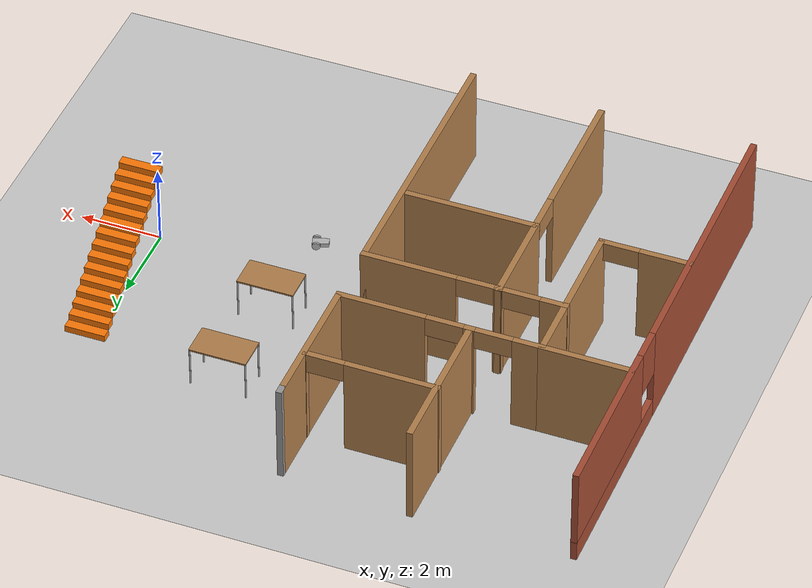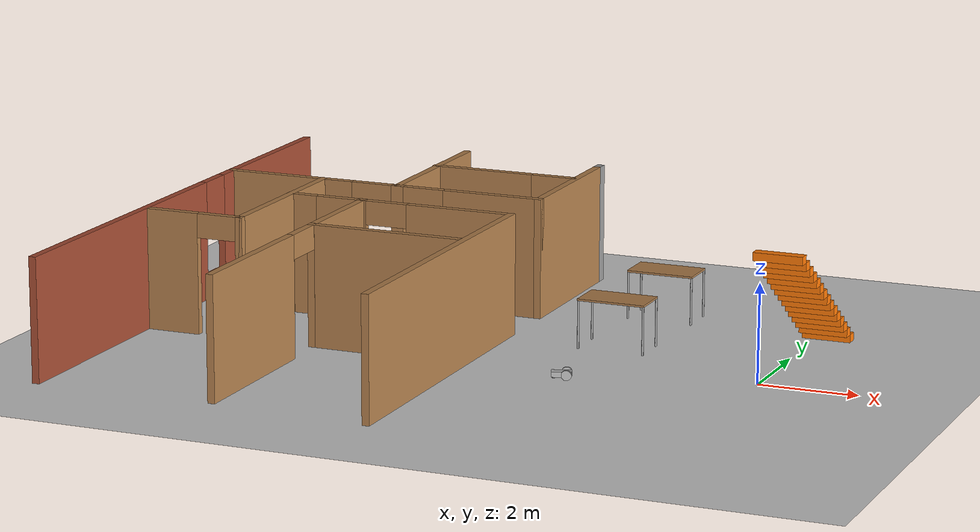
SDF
<sdf version="1.6">
 <world name="default">
  <model name="ground_plane">
   <static>1</static>
   <link name="link">
    <collision name="collision">
     <geometry><plane><normal>0 0 1</normal><size>100 100</size></plane></geometry>
     <surface><friction><ode><mu>100</mu><mu2>50</mu2></ode></friction></surface>
    </collision>
    <visual name="visual">
     <cast_shadows>0</cast_shadows>
     <geometry><plane><normal>0 0 1</normal><size>100 100</size></plane></geometry>
     <material>
      <script><uri>file://media/materials/scripts/gazebo.material</uri><name>Gazebo/Grey</name></script>
     </material>
    </visual>
   </link>
  </model>
  <model name="myhouse">
   <pose>-0.386417 0.578117 0 0 -0 0</pose>
   <link name="Stairs_1">
    <visual name="Stairs_1_Visual_0">
     <pose>0.612913 3.12759 0.083333 0 -0 0</pose>
     <geometry><box><size>1 0.233333 0.166667</size></box></geometry>
     <material>
      <script><uri>file://media/materials/scripts/gazebo.material</uri><name>Gazebo/Grey</name></script>
      <ambient>0.996078 0.47451 0.0196078 1</ambient>
     </material>
    </visual>
    <collision name="Stairs_1_Collision_0">
     <geometry><box><size>1 0.233333 0.166667</size></box></geometry>
     <pose>0.612913 3.12759 0.083333 0 -0 0</pose>
    </collision>
    <visual name="Stairs_1_Visual_1">
     <pose>0.612913 2.89426 0.25 0 -0 0</pose>
     <geometry><box><size>1 0.233333 0.166667</size></box></geometry>
     <material>
      <script><uri>file://media/materials/scripts/gazebo.material</uri><name>Gazebo/Grey</name></script>
      <ambient>0.996078 0.47451 0.0196078 1</ambient>
     </material>
    </visual>
    <collision name="Stairs_1_Collision_1">
     <geometry><box><size>1 0.233333 0.166667</size></box></geometry>
     <pose>0.612913 2.89426 0.25 0 -0 0</pose>
    </collision>
    <visual name="Stairs_1_Visual_2">
     <pose>0.612913 2.66093 0.416667 0 -0 0</pose>
     <geometry><box><size>1 0.233333 0.166667</size></box></geometry>
     <material>
      <script><uri>file://media/materials/scripts/gazebo.material</uri><name>Gazebo/Grey</name></script>
      <ambient>0.996078 0.47451 0.0196078 1</ambient>
     </material>
    </visual>
    <collision name="Stairs_1_Collision_2">
     <geometry><box><size>1 0.233333 0.166667</size></box></geometry>
     <pose>0.612913 2.66093 0.416667 0 -0 0</pose>
    </collision>
    <visual name="Stairs_1_Visual_3">
     <pose>0.612913 2.4276 0.583333 0 -0 0</pose>
     <geometry><box><size>1 0.233333 0.166667</size></box></geometry>
     <material>
      <script><uri>file://media/materials/scripts/gazebo.material</uri><name>Gazebo/Grey</name></script>
      <ambient>0.996078 0.47451 0.0196078 1</ambient>
     </material>
    </visual>
    <collision name="Stairs_1_Collision_3">
     <geometry><box><size>1 0.233333 0.166667</size></box></geometry>
     <pose>0.612913 2.4276 0.583333 0 -0 0</pose>
    </collision>
    <visual name="Stairs_1_Visual_4">
     <pose>0.612913 2.19426 0.75 0 -0 0</pose>
     <geometry><box><size>1 0.233333 0.166667</size></box></geometry>
     <material>
      <script><uri>file://media/materials/scripts/gazebo.material</uri><name>Gazebo/Grey</name></script>
      <ambient>0.996078 0.47451 0.0196078 1</ambient>
     </material>
    </visual>
    <collision name="Stairs_1_Collision_4">
     <geometry><box><size>1 0.233333 0.166667</size></box></geometry>
     <pose>0.612913 2.19426 0.75 0 -0 0</pose>
    </collision>
    <visual name="Stairs_1_Visual_5">
     <pose>0.612913 1.96093 0.916667 0 -0 0</pose>
     <geometry><box><size>1 0.233333 0.166667</size></box></geometry>
     <material>
      <script><uri>file://media/materials/scripts/gazebo.material</uri><name>Gazebo/Grey</name></script>
      <ambient>0.996078 0.47451 0.0196078 1</ambient>
     </material>
    </visual>
    <collision name="Stairs_1_Collision_5">
     <geometry><box><size>1 0.233333 0.166667</size></box></geometry>
     <pose>0.612913 1.96093 0.916667 0 -0 0</pose>
    </collision>
    <visual name="Stairs_1_Visual_6">
     <pose>0.612913 1.72759 1.08333 0 -0 0</pose>
     <geometry><box><size>1 0.233333 0.166667</size></box></geometry>
     <material>
      <script><uri>file://media/materials/scripts/gazebo.material</uri><name>Gazebo/Grey</name></script>
      <ambient>0.996078 0.47451 0.0196078 1</ambient>
     </material>
    </visual>
    <collision name="Stairs_1_Collision_6">
     <geometry><box><size>1 0.233333 0.166667</size></box></geometry>
     <pose>0.612913 1.72759 1.08333 0 -0 0</pose>
    </collision>
    <visual name="Stairs_1_Visual_7">
     <pose>0.612913 1.49426 1.25 0 -0 0</pose>
     <geometry><box><size>1 0.233333 0.166667</size></box></geometry>
     <material>
      <script><uri>file://media/materials/scripts/gazebo.material</uri><name>Gazebo/Grey</name></script>
      <ambient>0.996078 0.47451 0.0196078 1</ambient>
     </material>
    </visual>
    <collision name="Stairs_1_Collision_7">
     <geometry><box><size>1 0.233333 0.166667</size></box></geometry>
     <pose>0.612913 1.49426 1.25 0 -0 0</pose>
    </collision>
    <visual name="Stairs_1_Visual_8">
     <pose>0.612913 1.26093 1.41667 0 -0 0</pose>
     <geometry><box><size>1 0.233333 0.166667</size></box></geometry>
     <material>
      <script><uri>file://media/materials/scripts/gazebo.material</uri><name>Gazebo/Grey</name></script>
      <ambient>0.996078 0.47451 0.0196078 1</ambient>
     </material>
    </visual>
    <collision name="Stairs_1_Collision_8">
     <geometry><box><size>1 0.233333 0.166667</size></box></geometry>
     <pose>0.612913 1.26093 1.41667 0 -0 0</pose>
    </collision>
    <visual name="Stairs_1_Visual_9">
     <pose>0.612913 1.0276 1.58333 0 -0 0</pose>
     <geometry><box><size>1 0.233333 0.166667</size></box></geometry>
     <material>
      <script><uri>file://media/materials/scripts/gazebo.material</uri><name>Gazebo/Grey</name></script>
      <ambient>0.996078 0.47451 0.0196078 1</ambient>
     </material>
    </visual>
    <collision name="Stairs_1_Collision_9">
     <geometry><box><size>1 0.233333 0.166667</size></box></geometry>
     <pose>0.612913 1.0276 1.58333 0 -0 0</pose>
    </collision>
    <visual name="Stairs_1_Visual_10">
     <pose>0.612913 0.794262 1.75 0 -0 0</pose>
     <geometry><box><size>1 0.233333 0.166667</size></box></geometry>
     <material>
      <script><uri>file://media/materials/scripts/gazebo.material</uri><name>Gazebo/Grey</name></script>
      <ambient>0.996078 0.47451 0.0196078 1</ambient>
     </material>
    </visual>
    <collision name="Stairs_1_Collision_10">
     <geometry><box><size>1 0.233333 0.166667</size></box></geometry>
     <pose>0.612913 0.794262 1.75 0 -0 0</pose>
    </collision>
    <visual name="Stairs_1_Visual_11">
     <pose>0.612913 0.560929 1.91667 0 -0 0</pose>
     <geometry><box><size>1 0.233333 0.166667</size></box></geometry>
     <material>
      <script><uri>file://media/materials/scripts/gazebo.material</uri><name>Gazebo/Grey</name></script>
      <ambient>0.996078 0.47451 0.0196078 1</ambient>
     </material>
    </visual>
    <collision name="Stairs_1_Collision_11">
     <geometry><box><size>1 0.233333 0.166667</size></box></geometry>
     <pose>0.612913 0.560929 1.91667 0 -0 0</pose>
    </collision>
    <visual name="Stairs_1_Visual_12">
     <pose>0.612913 0.327595 2.08333 0 -0 0</pose>
     <geometry><box><size>1 0.233333 0.166667</size></box></geometry>
     <material>
      <script><uri>file://media/materials/scripts/gazebo.material</uri><name>Gazebo/Grey</name></script>
      <ambient>0.996078 0.47451 0.0196078 1</ambient>
     </material>
    </visual>
    <collision name="Stairs_1_Collision_12">
     <geometry><box><size>1 0.233333 0.166667</size></box></geometry>
     <pose>0.612913 0.327595 2.08333 0 -0 0</pose>
    </collision>
    <visual name="Stairs_1_Visual_13">
     <pose>0.612913 0.094262 2.25 0 -0 0</pose>
     <geometry><box><size>1 0.233333 0.166667</size></box></geometry>
     <material>
      <script><uri>file://media/materials/scripts/gazebo.material</uri><name>Gazebo/Grey</name></script>
      <ambient>0.996078 0.47451 0.0196078 1</ambient>
     </material>
    </visual>
    <collision name="Stairs_1_Collision_13">
     <geometry><box><size>1 0.233333 0.166667</size></box></geometry>
     <pose>0.612913 0.094262 2.25 0 -0 0</pose>
    </collision>
    <visual name="Stairs_1_Visual_14">
     <pose>0.612913 -0.139071 2.41667 0 -0 0</pose>
     <geometry><box><size>1 0.233333 0.166667</size></box></geometry>
     <material>
      <script><uri>file://media/materials/scripts/gazebo.material</uri><name>Gazebo/Grey</name></script>
      <ambient>0.996078 0.47451 0.0196078 1</ambient>
     </material>
    </visual>
    <collision name="Stairs_1_Collision_14">
     <geometry><box><size>1 0.233333 0.166667</size></box></geometry>
     <pose>0.612913 -0.139071 2.41667 0 -0 0</pose>
    </collision>
   </link>
   <link name="Wall_10">
    <pose>-12.3 -0.005752 0 0 -0 1.5708</pose>
    <visual name="Wall_10_Visual_0">
     <pose>-2.48016 0 1.25 0 -0 0</pose>
     <geometry><box><size>7.03967 0.15 2.5</size></box></geometry>
     <material>
      <script><uri>file://media/materials/scripts/gazebo.material</uri><name>Gazebo/Bricks</name></script>
      <ambient>0.435294 0.796078 0.67451 1</ambient>
     </material>
    </visual>
    <collision name="Wall_10_Collision_0">
     <geometry><box><size>7.03967 0.15 2.5</size></box></geometry>
     <pose>-2.48016 0 1.25 0 -0 0</pose>
    </collision>
    <visual name="Wall_10_Visual_1">
     <pose>3.51984 0 0.25 0 -0 0</pose>
     <geometry><box><size>4.96033 0.15 0.5</size></box></geometry>
     <material>
      <script><uri>file://media/materials/scripts/gazebo.material</uri><name>Gazebo/Bricks</name></script>
      <ambient>0.435294 0.796078 0.67451 1</ambient>
     </material>
    </visual>
    <collision name="Wall_10_Collision_1">
     <geometry><box><size>4.96033 0.15 0.5</size></box></geometry>
     <pose>3.51984 0 0.25 0 -0 0</pose>
    </collision>
    <visual name="Wall_10_Visual_2">
     <pose>3.91984 0 1.5 0 -0 0</pose>
     <geometry><box><size>4.16033 0.15 2</size></box></geometry>
     <material>
      <script><uri>file://media/materials/scripts/gazebo.material</uri><name>Gazebo/Bricks</name></script>
      <ambient>0.435294 0.796078 0.67451 1</ambient>
     </material>
    </visual>
    <collision name="Wall_10_Collision_2">
     <geometry><box><size>4.16033 0.15 2</size></box></geometry>
     <pose>3.91984 0 1.5 0 -0 0</pose>
    </collision>
    <visual name="Wall_10_Visual_3">
     <pose>1.43967 0 1.9 0 -0 0</pose>
     <geometry><box><size>0.8 0.15 1.2</size></box></geometry>
     <material>
      <script><uri>file://media/materials/scripts/gazebo.material</uri><name>Gazebo/Bricks</name></script>
      <ambient>0.435294 0.796078 0.67451 1</ambient>
     </material>
    </visual>
    <collision name="Wall_10_Collision_3">
     <geometry><box><size>0.8 0.15 1.2</size></box></geometry>
     <pose>1.43967 0 1.9 0 -0 0</pose>
    </collision>
   </link>
   <link name="Wall_40">
    <collision name="Wall_40_Collision">
     <geometry><box><size>2.25 0.15 2.5</size></box></geometry>
     <pose>0 0 1.25 0 -0 0</pose>
    </collision>
    <visual name="Wall_40_Visual">
     <pose>0 0 1.25 0 -0 0</pose>
     <geometry><box><size>2.25 0.15 2.5</size></box></geometry>
     <material>
      <script><uri>file://media/materials/scripts/gazebo.material</uri><name>Gazebo/Wood</name></script>
      <ambient>1 1 1 1</ambient>
     </material>
    </visual>
    <pose>-11.2299 2.35915 0 0 -0 0</pose>
   </link>
   <link name="Wall_41">
    <collision name="Wall_41_Collision">
     <geometry><box><size>4 0.15 2.5</size></box></geometry>
     <pose>0 0 1.25 0 -0 0</pose>
    </collision>
    <visual name="Wall_41_Visual">
     <pose>0 0 1.25 0 -0 0</pose>
     <geometry><box><size>4 0.15 2.5</size></box></geometry>
     <material>
      <script><uri>file://media/materials/scripts/gazebo.material</uri><name>Gazebo/Wood</name></script>
      <ambient>1 1 1 1</ambient>
     </material>
    </visual>
    <pose>-10.1799 0.434146 0 0 0 -1.5708</pose>
   </link>
   <link name="Wall_42">
    <pose>-11.2299 -1.49085 0 0 -0 3.14159</pose>
    <visual name="Wall_42_Visual_0">
     <pose>-1.0771 0 1.25 0 -0 0</pose>
     <geometry><box><size>0.0958 0.15 2.5</size></box></geometry>
     <material>
      <script><uri>file://media/materials/scripts/gazebo.material</uri><name>Gazebo/Wood</name></script>
      <ambient>1 1 1 1</ambient>
     </material>
    </visual>
    <collision name="Wall_42_Collision_0">
     <geometry><box><size>0.0958 0.15 2.5</size></box></geometry>
     <pose>-1.0771 0 1.25 0 -0 0</pose>
    </collision>
    <visual name="Wall_42_Visual_1">
     <pose>0.4979 0 1.25 0 -0 0</pose>
     <geometry><box><size>1.2542 0.15 2.5</size></box></geometry>
     <material>
      <script><uri>file://media/materials/scripts/gazebo.material</uri><name>Gazebo/Wood</name></script>
      <ambient>1 1 1 1</ambient>
     </material>
    </visual>
    <collision name="Wall_42_Collision_1">
     <geometry><box><size>1.2542 0.15 2.5</size></box></geometry>
     <pose>0.4979 0 1.25 0 -0 0</pose>
    </collision>
    <visual name="Wall_42_Visual_2">
     <pose>-0.5792 0 2.25 0 -0 0</pose>
     <geometry><box><size>0.9 0.15 0.5</size></box></geometry>
     <material>
      <script><uri>file://media/materials/scripts/gazebo.material</uri><name>Gazebo/Wood</name></script>
      <ambient>1 1 1 1</ambient>
     </material>
    </visual>
    <collision name="Wall_42_Collision_2">
     <geometry><box><size>0.9 0.15 0.5</size></box></geometry>
     <pose>-0.5792 0 2.25 0 -0 0</pose>
    </collision>
   </link>
   <link name="Wall_44">
    <pose>-7.75489 2.35915 0 0 -0 0</pose>
    <visual name="Wall_44_Visual_0">
     <pose>-2.11836 0 1.25 0 -0 0</pose>
     <geometry><box><size>0.763284 0.15 2.5</size></box></geometry>
     <material>
      <script><uri>file://media/materials/scripts/gazebo.material</uri><name>Gazebo/Wood</name></script>
      <ambient>1 1 1 1</ambient>
     </material>
    </visual>
    <collision name="Wall_44_Collision_0">
     <geometry><box><size>0.763284 0.15 2.5</size></box></geometry>
     <pose>-2.11836 0 1.25 0 -0 0</pose>
    </collision>
    <visual name="Wall_44_Visual_1">
     <pose>-0.703422 0 1.25 0 -0 0</pose>
     <geometry><box><size>0.266588 0.15 2.5</size></box></geometry>
     <material>
      <script><uri>file://media/materials/scripts/gazebo.material</uri><name>Gazebo/Wood</name></script>
      <ambient>1 1 1 1</ambient>
     </material>
    </visual>
    <collision name="Wall_44_Collision_1">
     <geometry><box><size>0.266588 0.15 2.5</size></box></geometry>
     <pose>-0.703422 0 1.25 0 -0 0</pose>
    </collision>
    <visual name="Wall_44_Visual_2">
     <pose>1.41494 0 1.25 0 -0 0</pose>
     <geometry><box><size>2.17013 0.15 2.5</size></box></geometry>
     <material>
      <script><uri>file://media/materials/scripts/gazebo.material</uri><name>Gazebo/Wood</name></script>
      <ambient>1 1 1 1</ambient>
     </material>
    </visual>
    <collision name="Wall_44_Collision_2">
     <geometry><box><size>2.17013 0.15 2.5</size></box></geometry>
     <pose>1.41494 0 1.25 0 -0 0</pose>
    </collision>
    <visual name="Wall_44_Visual_3">
     <pose>-1.28672 0 2.25 0 -0 0</pose>
     <geometry><box><size>0.9 0.15 0.5</size></box></geometry>
     <material>
      <script><uri>file://media/materials/scripts/gazebo.material</uri><name>Gazebo/Wood</name></script>
      <ambient>1 1 1 1</ambient>
     </material>
    </visual>
    <collision name="Wall_44_Collision_3">
     <geometry><box><size>0.9 0.15 0.5</size></box></geometry>
     <pose>-1.28672 0 2.25 0 -0 0</pose>
    </collision>
    <visual name="Wall_44_Visual_4">
     <pose>-0.120128 0 2.25 0 -0 0</pose>
     <geometry><box><size>0.9 0.15 0.5</size></box></geometry>
     <material>
      <script><uri>file://media/materials/scripts/gazebo.material</uri><name>Gazebo/Wood</name></script>
      <ambient>1 1 1 1</ambient>
     </material>
    </visual>
    <collision name="Wall_44_Collision_4">
     <geometry><box><size>0.9 0.15 0.5</size></box></geometry>
     <pose>-0.120128 0 2.25 0 -0 0</pose>
    </collision>
   </link>
   <link name="Wall_45">
    <collision name="Wall_45_Collision">
     <geometry><box><size>3.5 0.15 2.5</size></box></geometry>
     <pose>0 0 1.25 0 -0 0</pose>
    </collision>
    <visual name="Wall_45_Visual">
     <pose>0 0 1.25 0 -0 0</pose>
     <geometry><box><size>3.5 0.15 2.5</size></box></geometry>
     <material>
      <script><uri>file://media/materials/scripts/gazebo.material</uri><name>Gazebo/Wood</name></script>
      <ambient>1 1 1 1</ambient>
     </material>
    </visual>
    <pose>-5.32989 4.03414 0 0 -0 1.5708</pose>
   </link>
   <link name="Wall_46">
    <collision name="Wall_46_Collision">
     <geometry><box><size>0.25 0.15 2.5</size></box></geometry>
     <pose>0 0 1.25 0 -0 0</pose>
    </collision>
    <visual name="Wall_46_Visual">
     <pose>0 0 1.25 0 -0 0</pose>
     <geometry><box><size>0.25 0.15 2.5</size></box></geometry>
     <material>
      <script><uri>file://media/materials/scripts/gazebo.material</uri><name>Gazebo/Grey</name></script>
      <ambient>1 1 1 1</ambient>
     </material>
    </visual>
    <pose>-5.32989 5.75915 0 0 -0 1.5708</pose>
   </link>
   <link name="Wall_52">
    <collision name="Wall_52_Collision">
     <geometry><box><size>3.75 0.15 2.5</size></box></geometry>
     <pose>0 0 1.25 0 -0 0</pose>
    </collision>
    <visual name="Wall_52_Visual">
     <pose>0 0 1.25 0 -0 0</pose>
     <geometry><box><size>3.75 0.15 2.5</size></box></geometry>
     <material>
      <script><uri>file://media/materials/scripts/gazebo.material</uri><name>Gazebo/Wood</name></script>
      <ambient>1 1 1 1</ambient>
     </material>
    </visual>
    <pose>-8.47842 4.17926 0 0 -0 1.5708</pose>
   </link>
   <link name="Wall_54">
    <pose>-6.94853 4.45096 0 0 -0 0</pose>
    <visual name="Wall_54_Visual_0">
     <pose>-0.495061 0 1.25 0 -0 0</pose>
     <geometry><box><size>2.25988 0.15 2.5</size></box></geometry>
     <material>
      <script><uri>file://media/materials/scripts/gazebo.material</uri><name>Gazebo/Wood</name></script>
      <ambient>1 1 1 1</ambient>
     </material>
    </visual>
    <collision name="Wall_54_Collision_0">
     <geometry><box><size>2.25988 0.15 2.5</size></box></geometry>
     <pose>-0.495061 0 1.25 0 -0 0</pose>
    </collision>
    <visual name="Wall_54_Visual_1">
     <pose>1.57994 0 1.25 0 -0 0</pose>
     <geometry><box><size>0.090122 0.15 2.5</size></box></geometry>
     <material>
      <script><uri>file://media/materials/scripts/gazebo.material</uri><name>Gazebo/Wood</name></script>
      <ambient>1 1 1 1</ambient>
     </material>
    </visual>
    <collision name="Wall_54_Collision_1">
     <geometry><box><size>0.090122 0.15 2.5</size></box></geometry>
     <pose>1.57994 0 1.25 0 -0 0</pose>
    </collision>
    <visual name="Wall_54_Visual_2">
     <pose>1.08488 0 2.25 0 -0 0</pose>
     <geometry><box><size>0.9 0.15 0.5</size></box></geometry>
     <material>
      <script><uri>file://media/materials/scripts/gazebo.material</uri><name>Gazebo/Wood</name></script>
      <ambient>1 1 1 1</ambient>
     </material>
    </visual>
    <collision name="Wall_54_Collision_2">
     <geometry><box><size>0.9 0.15 0.5</size></box></geometry>
     <pose>1.08488 0 2.25 0 -0 0</pose>
    </collision>
   </link>
   <link name="Wall_56">
    <pose>-7.76307 0.870741 0 0 -0 0</pose>
    <visual name="Wall_56_Visual_0">
     <pose>-2.16455 0 1.25 0 -0 0</pose>
     <geometry><box><size>0.670906 0.15 2.5</size></box></geometry>
     <material>
      <script><uri>file://media/materials/scripts/gazebo.material</uri><name>Gazebo/Wood</name></script>
      <ambient>1 1 1 1</ambient>
     </material>
    </visual>
    <collision name="Wall_56_Collision_0">
     <geometry><box><size>0.670906 0.15 2.5</size></box></geometry>
     <pose>-2.16455 0 1.25 0 -0 0</pose>
    </collision>
    <visual name="Wall_56_Visual_1">
     <pose>-0.825971 0 1.25 0 -0 0</pose>
     <geometry><box><size>0.206247 0.15 2.5</size></box></geometry>
     <material>
      <script><uri>file://media/materials/scripts/gazebo.material</uri><name>Gazebo/Wood</name></script>
      <ambient>1 1 1 1</ambient>
     </material>
    </visual>
    <collision name="Wall_56_Collision_1">
     <geometry><box><size>0.206247 0.15 2.5</size></box></geometry>
     <pose>-0.825971 0 1.25 0 -0 0</pose>
    </collision>
    <visual name="Wall_56_Visual_2">
     <pose>1.33858 0 1.25 0 -0 0</pose>
     <geometry><box><size>2.32285 0.15 2.5</size></box></geometry>
     <material>
      <script><uri>file://media/materials/scripts/gazebo.material</uri><name>Gazebo/Wood</name></script>
      <ambient>1 1 1 1</ambient>
     </material>
    </visual>
    <collision name="Wall_56_Collision_2">
     <geometry><box><size>2.32285 0.15 2.5</size></box></geometry>
     <pose>1.33858 0 1.25 0 -0 0</pose>
    </collision>
    <visual name="Wall_56_Visual_3">
     <pose>-1.37909 0 2.25 0 -0 0</pose>
     <geometry><box><size>0.9 0.15 0.5</size></box></geometry>
     <material>
      <script><uri>file://media/materials/scripts/gazebo.material</uri><name>Gazebo/Wood</name></script>
      <ambient>1 1 1 1</ambient>
     </material>
    </visual>
    <collision name="Wall_56_Collision_3">
     <geometry><box><size>0.9 0.15 0.5</size></box></geometry>
     <pose>-1.37909 0 2.25 0 -0 0</pose>
    </collision>
    <visual name="Wall_56_Visual_4">
     <pose>-0.272847 0 2.25 0 -0 0</pose>
     <geometry><box><size>0.9 0.15 0.5</size></box></geometry>
     <material>
      <script><uri>file://media/materials/scripts/gazebo.material</uri><name>Gazebo/Wood</name></script>
      <ambient>1 1 1 1</ambient>
     </material>
    </visual>
    <collision name="Wall_56_Collision_4">
     <geometry><box><size>0.9 0.15 0.5</size></box></geometry>
     <pose>-0.272847 0 2.25 0 -0 0</pose>
    </collision>
   </link>
   <link name="Wall_57">
    <collision name="Wall_57_Collision">
     <geometry><box><size>7 0.15 2.5</size></box></geometry>
     <pose>0 0 1.25 0 -0 0</pose>
    </collision>
    <visual name="Wall_57_Visual">
     <pose>0 0 1.25 0 -0 0</pose>
     <geometry><box><size>7 0.15 2.5</size></box></geometry>
     <material>
      <script><uri>file://media/materials/scripts/gazebo.material</uri><name>Gazebo/Wood</name></script>
      <ambient>1 1 1 1</ambient>
     </material>
    </visual>
    <pose>-5.33807 -2.55426 0 0 0 -1.5708</pose>
   </link>
   <link name="Wall_59">
    <collision name="Wall_59_Collision">
     <geometry><box><size>2.5 0.15 2.5</size></box></geometry>
     <pose>0 0 1.25 0 -0 0</pose>
    </collision>
    <visual name="Wall_59_Visual">
     <pose>0 0 1.25 0 -0 0</pose>
     <geometry><box><size>2.5 0.15 2.5</size></box></geometry>
     <material>
      <script><uri>file://media/materials/scripts/gazebo.material</uri><name>Gazebo/Wood</name></script>
      <ambient>1 1 1 1</ambient>
     </material>
    </visual>
    <pose>-8.5991 -0.284145 0 0 0 -1.5708</pose>
   </link>
   <link name="Wall_60">
    <collision name="Wall_60_Collision">
     <geometry><box><size>3.25 0.15 2.5</size></box></geometry>
     <pose>0 0 1.25 0 -0 0</pose>
    </collision>
    <visual name="Wall_60_Visual">
     <pose>0 0 1.25 0 -0 0</pose>
     <geometry><box><size>3.25 0.15 2.5</size></box></geometry>
     <material>
      <script><uri>file://media/materials/scripts/gazebo.material</uri><name>Gazebo/Wood</name></script>
      <ambient>1 1 1 1</ambient>
     </material>
    </visual>
    <pose>-7.0491 -1.45914 0 0 -0 0</pose>
   </link>
   <link name="Wall_62">
    <pose>-8.5991 -3.63415 0 0 0 -1.5708</pose>
    <visual name="Wall_62_Visual_0">
     <pose>-2.17438 0 1.25 0 -0 0</pose>
     <geometry><box><size>0.151241 0.15 2.5</size></box></geometry>
     <material>
      <script><uri>file://media/materials/scripts/gazebo.material</uri><name>Gazebo/Wood</name></script>
      <ambient>1 1 1 1</ambient>
     </material>
    </visual>
    <collision name="Wall_62_Collision_0">
     <geometry><box><size>0.151241 0.15 2.5</size></box></geometry>
     <pose>-2.17438 0 1.25 0 -0 0</pose>
    </collision>
    <visual name="Wall_62_Visual_1">
     <pose>0.52562 0 1.25 0 -0 0</pose>
     <geometry><box><size>3.44876 0.15 2.5</size></box></geometry>
     <material>
      <script><uri>file://media/materials/scripts/gazebo.material</uri><name>Gazebo/Wood</name></script>
      <ambient>1 1 1 1</ambient>
     </material>
    </visual>
    <collision name="Wall_62_Collision_1">
     <geometry><box><size>3.44876 0.15 2.5</size></box></geometry>
     <pose>0.52562 0 1.25 0 -0 0</pose>
    </collision>
    <visual name="Wall_62_Visual_2">
     <pose>-1.64876 0 2.25 0 -0 0</pose>
     <geometry><box><size>0.9 0.15 0.5</size></box></geometry>
     <material>
      <script><uri>file://media/materials/scripts/gazebo.material</uri><name>Gazebo/Wood</name></script>
      <ambient>1 1 1 1</ambient>
     </material>
    </visual>
    <collision name="Wall_62_Collision_2">
     <geometry><box><size>0.9 0.15 0.5</size></box></geometry>
     <pose>-1.64876 0 2.25 0 -0 0</pose>
    </collision>
   </link>
   <static>1</static>
  </model>
  <model name="myturtle_0">
   <link name="chassis">
    <pose>0 0 0.1 0 -0 0</pose>
    <inertial>
     <inertia><ixx>1</ixx><ixy>0</ixy><ixz>0</ixz><iyy>1</iyy><iyz>0</iyz><izz>1</izz></inertia>
     <mass>1</mass>
    </inertial>
    <visual name="visual"><geometry><box><size>0.4 0.2 0.1</size></box></geometry></visual>
    <visual name="caster_visual">
     <pose>-0.15 0 -0.05 0 -0 0</pose>
     <geometry><sphere><radius>0.05</radius></sphere></geometry>
    </visual>
    <collision name="collision">
     <geometry><box><size>0.4 0.2 0.1</size></box></geometry>
     <surface>
      <friction>
       <ode><mu>1</mu><mu2>1</mu2><fdir1>0 0 0</fdir1><slip1>0</slip1><slip2>0</slip2></ode>
       <torsional>
        <coefficient>1</coefficient>
        <patch_radius>0</patch_radius>
        <surface_radius>0</surface_radius>
        <use_patch_radius>1</use_patch_radius>
        <ode><slip>0</slip></ode>
       </torsional>
      </friction>
      <bounce><restitution_coefficient>0</restitution_coefficient><threshold>1e+06</threshold></bounce>
      <contact>
       <collide_without_contact>0</collide_without_contact>
       <collide_without_contact_bitmask>1</collide_without_contact_bitmask>
       <collide_bitmask>1</collide_bitmask>
       <ode>
        <soft_cfm>0</soft_cfm>
        <soft_erp>0.2</soft_erp>
        <kp>1e+13</kp>
        <kd>1</kd>
        <max_vel>0.01</max_vel>
        <min_depth>0</min_depth>
       </ode>
       <bullet>
        <split_impulse>1</split_impulse>
        <split_impulse_penetration_threshold>-0.01</split_impulse_penetration_threshold>
        <soft_cfm>0</soft_cfm>
        <soft_erp>0.2</soft_erp>
        <kp>1e+13</kp>
        <kd>1</kd>
       </bullet>
      </contact>
     </surface>
    </collision>
    <collision name="caster_collision">
     <pose>-0.15 0 -0.05 0 -0 0</pose>
     <geometry><sphere><radius>0.05</radius></sphere></geometry>
     <surface>
      <friction>
       <ode><mu>0</mu><mu2>0</mu2><fdir1>0 0 0</fdir1><slip1>1</slip1><slip2>1</slip2></ode>
       <torsional>
        <coefficient>1</coefficient>
        <patch_radius>0</patch_radius>
        <surface_radius>0</surface_radius>
        <use_patch_radius>1</use_patch_radius>
        <ode><slip>0</slip></ode>
       </torsional>
      </friction>
      <bounce><restitution_coefficient>0</restitution_coefficient><threshold>1e+06</threshold></bounce>
      <contact>
       <collide_without_contact>0</collide_without_contact>
       <collide_without_contact_bitmask>1</collide_without_contact_bitmask>
       <collide_bitmask>1</collide_bitmask>
       <ode>
        <soft_cfm>0</soft_cfm>
        <soft_erp>0.2</soft_erp>
        <kp>1e+13</kp>
        <kd>1</kd>
        <max_vel>0.01</max_vel>
        <min_depth>0</min_depth>
       </ode>
       <bullet>
        <split_impulse>1</split_impulse>
        <split_impulse_penetration_threshold>-0.01</split_impulse_penetration_threshold>
        <soft_cfm>0</soft_cfm>
        <soft_erp>0.2</soft_erp>
        <kp>1e+13</kp>
        <kd>1</kd>
       </bullet>
      </contact>
     </surface>
    </collision>
   </link>
   <link name="left_wheel">
    <pose>0.1 0.13 0.1 0.000712 1.5707 1.57141</pose>
    <inertial>
     <inertia><ixx>1</ixx><ixy>0</ixy><ixz>0</ixz><iyy>1</iyy><iyz>0</iyz><izz>1</izz></inertia>
     <mass>1</mass>
    </inertial>
    <visual name="visual">
     <geometry><cylinder><radius>0.1</radius><length>0.05</length></cylinder></geometry>
    </visual>
    <collision name="collision">
     <geometry><cylinder><radius>0.1</radius><length>0.05</length></cylinder></geometry>
     <surface>
      <friction>
       <ode><mu>1</mu><mu2>1</mu2><fdir1>0 0 0</fdir1><slip1>0</slip1><slip2>0</slip2></ode>
       <torsional>
        <coefficient>1</coefficient>
        <patch_radius>0</patch_radius>
        <surface_radius>0</surface_radius>
        <use_patch_radius>1</use_patch_radius>
        <ode><slip>0</slip></ode>
       </torsional>
      </friction>
      <bounce><restitution_coefficient>0</restitution_coefficient><threshold>1e+06</threshold></bounce>
      <contact>
       <collide_without_contact>0</collide_without_contact>
       <collide_without_contact_bitmask>1</collide_without_contact_bitmask>
       <collide_bitmask>1</collide_bitmask>
       <ode>
        <soft_cfm>0</soft_cfm>
        <soft_erp>0.2</soft_erp>
        <kp>1e+13</kp>
        <kd>1</kd>
        <max_vel>0.01</max_vel>
        <min_depth>0</min_depth>
       </ode>
       <bullet>
        <split_impulse>1</split_impulse>
        <split_impulse_penetration_threshold>-0.01</split_impulse_penetration_threshold>
        <soft_cfm>0</soft_cfm>
        <soft_erp>0.2</soft_erp>
        <kp>1e+13</kp>
        <kd>1</kd>
       </bullet>
      </contact>
     </surface>
    </collision>
   </link>
   <link name="right_wheel">
    <pose>0.1 -0.13 0.1 0.000712 1.5707 1.57141</pose>
    <inertial>
     <inertia><ixx>1</ixx><ixy>0</ixy><ixz>0</ixz><iyy>1</iyy><iyz>0</iyz><izz>1</izz></inertia>
     <mass>1</mass>
    </inertial>
    <visual name="visual">
     <geometry><cylinder><radius>0.1</radius><length>0.05</length></cylinder></geometry>
    </visual>
    <collision name="collision">
     <geometry><cylinder><radius>0.1</radius><length>0.05</length></cylinder></geometry>
     <surface>
      <friction>
       <ode><mu>1</mu><mu2>1</mu2><fdir1>0 0 0</fdir1><slip1>0</slip1><slip2>0</slip2></ode>
       <torsional>
        <coefficient>1</coefficient>
        <patch_radius>0</patch_radius>
        <surface_radius>0</surface_radius>
        <use_patch_radius>1</use_patch_radius>
        <ode><slip>0</slip></ode>
       </torsional>
      </friction>
      <bounce><restitution_coefficient>0</restitution_coefficient><threshold>1e+06</threshold></bounce>
      <contact>
       <collide_without_contact>0</collide_without_contact>
       <collide_without_contact_bitmask>1</collide_without_contact_bitmask>
       <collide_bitmask>1</collide_bitmask>
       <ode>
        <soft_cfm>0</soft_cfm>
        <soft_erp>0.2</soft_erp>
        <kp>1e+13</kp>
        <kd>1</kd>
        <max_vel>0.01</max_vel>
        <min_depth>0</min_depth>
       </ode>
       <bullet>
        <split_impulse>1</split_impulse>
        <split_impulse_penetration_threshold>-0.01</split_impulse_penetration_threshold>
        <soft_cfm>0</soft_cfm>
        <soft_erp>0.2</soft_erp>
        <kp>1e+13</kp>
        <kd>1</kd>
       </bullet>
      </contact>
     </surface>
    </collision>
   </link>
   <joint name="left_wheel_hinge" type="revolute">
    <parent>chassis</parent>
    <child>left_wheel</child>
    <pose>0 0 -0.03 0 -0 0</pose>
    <axis>
     <xyz>0 0 1</xyz>
     <use_parent_model_frame>0</use_parent_model_frame>
     <limit><lower>-1e+16</lower><upper>1e+16</upper><effort>-1</effort><velocity>-1</velocity></limit>
     <dynamics>
      <spring_reference>0</spring_reference>
      <spring_stiffness>0</spring_stiffness>
      <damping>0</damping>
      <friction>0</friction>
     </dynamics>
    </axis>
    <physics>
     <ode><limit><cfm>0</cfm><erp>0.2</erp></limit><suspension><cfm>0</cfm><erp>0.2</erp></suspension></ode>
    </physics>
   </joint>
   <joint name="right_wheel_hinge" type="revolute">
    <parent>chassis</parent>
    <child>right_wheel</child>
    <pose>0 0 0.03 0 -0 0</pose>
    <axis>
     <xyz>0 0 1</xyz>
     <use_parent_model_frame>0</use_parent_model_frame>
     <limit><lower>-1e+16</lower><upper>1e+16</upper><effort>-1</effort><velocity>-1</velocity></limit>
     <dynamics>
      <spring_reference>0</spring_reference>
      <spring_stiffness>0</spring_stiffness>
      <damping>0</damping>
      <friction>0</friction>
     </dynamics>
    </axis>
    <physics>
     <ode><limit><cfm>0</cfm><erp>0.2</erp></limit><suspension><cfm>0</cfm><erp>0.2</erp></suspension></ode>
    </physics>
   </joint>
   <static>0</static>
   <pose>-3.60171 -1.09824 5e-06 4e-06 2.1e-05 0.321085</pose>
  </model>
  <model name="table_1">
   <static>0</static>
   <link name="link">
    <collision name="surface">
     <pose>0 0 1 0 -0 0</pose>
     <geometry><box><size>1.5 0.8 0.03</size></box></geometry>
     <surface><friction><ode><mu>0.6</mu><mu2>0.6</mu2></ode></friction></surface>
    </collision>
    <visual name="visual1">
     <pose>0 0 1 0 -0 0</pose>
     <geometry><box><size>1.4 0.8 0.04</size></box></geometry>
     <material>
      <script><uri>file://media/materials/scripts/gazebo.material</uri><name>Gazebo/Wood</name></script>
     </material>
    </visual>
    <collision name="front_left_leg">
     <pose>0.68 0.38 0.5 0 -0 0</pose>
     <geometry><cylinder><radius>0.02</radius><length>1</length></cylinder></geometry>
    </collision>
    <visual name="front_left_leg">
     <pose>0.68 0.38 0.5 0 -0 0</pose>
     <geometry><cylinder><radius>0.02</radius><length>1</length></cylinder></geometry>
     <material>
      <script><uri>file://media/materials/scripts/gazebo.material</uri><name>Gazebo/Grey</name></script>
     </material>
    </visual>
    <collision name="front_right_leg">
     <pose>0.68 -0.38 0.5 0 -0 0</pose>
     <geometry><cylinder><radius>0.02</radius><length>1</length></cylinder></geometry>
    </collision>
    <visual name="front_right_leg">
     <pose>0.68 -0.38 0.5 0 -0 0</pose>
     <geometry><cylinder><radius>0.02</radius><length>1</length></cylinder></geometry>
     <material>
      <script><uri>file://media/materials/scripts/gazebo.material</uri><name>Gazebo/Grey</name></script>
     </material>
    </visual>
    <collision name="back_right_leg">
     <pose>-0.68 -0.38 0.5 0 -0 0</pose>
     <geometry><cylinder><radius>0.02</radius><length>1</length></cylinder></geometry>
    </collision>
    <visual name="back_right_leg">
     <pose>-0.68 -0.38 0.5 0 -0 0</pose>
     <geometry><cylinder><radius>0.02</radius><length>1</length></cylinder></geometry>
     <material>
      <script><uri>file://media/materials/scripts/gazebo.material</uri><name>Gazebo/Grey</name></script>
     </material>
    </visual>
    <collision name="back_left_leg">
     <pose>-0.68 0.38 0.5 0 -0 0</pose>
     <geometry><cylinder><radius>0.02</radius><length>1</length></cylinder></geometry>
    </collision>
    <visual name="back_left_leg">
     <pose>-0.68 0.38 0.5 0 -0 0</pose>
     <geometry><cylinder><radius>0.02</radius><length>1</length></cylinder></geometry>
     <material>
      <script><uri>file://media/materials/scripts/gazebo.material</uri><name>Gazebo/Grey</name></script>
     </material>
    </visual>
    <inertial>
     <inertia><ixx>1</ixx><ixy>0</ixy><ixz>0</ixz><iyy>1</iyy><iyz>0</iyz><izz>1</izz></inertia>
     <mass>1</mass>
    </inertial>
   </link>
   <pose>-3.42366 1.43734 -9e-06 0 -1e-06 0</pose>
  </model>
  <model name="table_2">
   <static>0</static>
   <link name="link">
    <collision name="surface">
     <pose>0 0 1 0 -0 0</pose>
     <geometry><box><size>1.5 0.8 0.03</size></box></geometry>
     <surface><friction><ode><mu>0.6</mu><mu2>0.6</mu2></ode></friction></surface>
    </collision>
    <visual name="visual1">
     <pose>0 0 1 0 -0 0</pose>
     <geometry><box><size>1.4 0.8 0.04</size></box></geometry>
     <material>
      <script><uri>file://media/materials/scripts/gazebo.material</uri><name>Gazebo/Wood</name></script>
     </material>
    </visual>
    <collision name="front_left_leg">
     <pose>0.68 0.38 0.5 0 -0 0</pose>
     <geometry><cylinder><radius>0.02</radius><length>1</length></cylinder></geometry>
    </collision>
    <visual name="front_left_leg">
     <pose>0.68 0.38 0.5 0 -0 0</pose>
     <geometry><cylinder><radius>0.02</radius><length>1</length></cylinder></geometry>
     <material>
      <script><uri>file://media/materials/scripts/gazebo.material</uri><name>Gazebo/Grey</name></script>
     </material>
    </visual>
    <collision name="front_right_leg">
     <pose>0.68 -0.38 0.5 0 -0 0</pose>
     <geometry><cylinder><radius>0.02</radius><length>1</length></cylinder></geometry>
    </collision>
    <visual name="front_right_leg">
     <pose>0.68 -0.38 0.5 0 -0 0</pose>
     <geometry><cylinder><radius>0.02</radius><length>1</length></cylinder></geometry>
     <material>
      <script><uri>file://media/materials/scripts/gazebo.material</uri><name>Gazebo/Grey</name></script>
     </material>
    </visual>
    <collision name="back_right_leg">
     <pose>-0.68 -0.38 0.5 0 -0 0</pose>
     <geometry><cylinder><radius>0.02</radius><length>1</length></cylinder></geometry>
    </collision>
    <visual name="back_right_leg">
     <pose>-0.68 -0.38 0.5 0 -0 0</pose>
     <geometry><cylinder><radius>0.02</radius><length>1</length></cylinder></geometry>
     <material>
      <script><uri>file://media/materials/scripts/gazebo.material</uri><name>Gazebo/Grey</name></script>
     </material>
    </visual>
    <collision name="back_left_leg">
     <pose>-0.68 0.38 0.5 0 -0 0</pose>
     <geometry><cylinder><radius>0.02</radius><length>1</length></cylinder></geometry>
    </collision>
    <visual name="back_left_leg">
     <pose>-0.68 0.38 0.5 0 -0 0</pose>
     <geometry><cylinder><radius>0.02</radius><length>1</length></cylinder></geometry>
     <material>
      <script><uri>file://media/materials/scripts/gazebo.material</uri><name>Gazebo/Grey</name></script>
     </material>
    </visual>
    <inertial>
     <inertia><ixx>1</ixx><ixy>0</ixy><ixz>0</ixz><iyy>1</iyy><iyz>0</iyz><izz>1</izz></inertia>
     <mass>1</mass>
    </inertial>
   </link>
   <pose>-3.32768 3.99129 -9e-06 0 -1e-06 0</pose>
  </model>
 </world>
</sdf>
